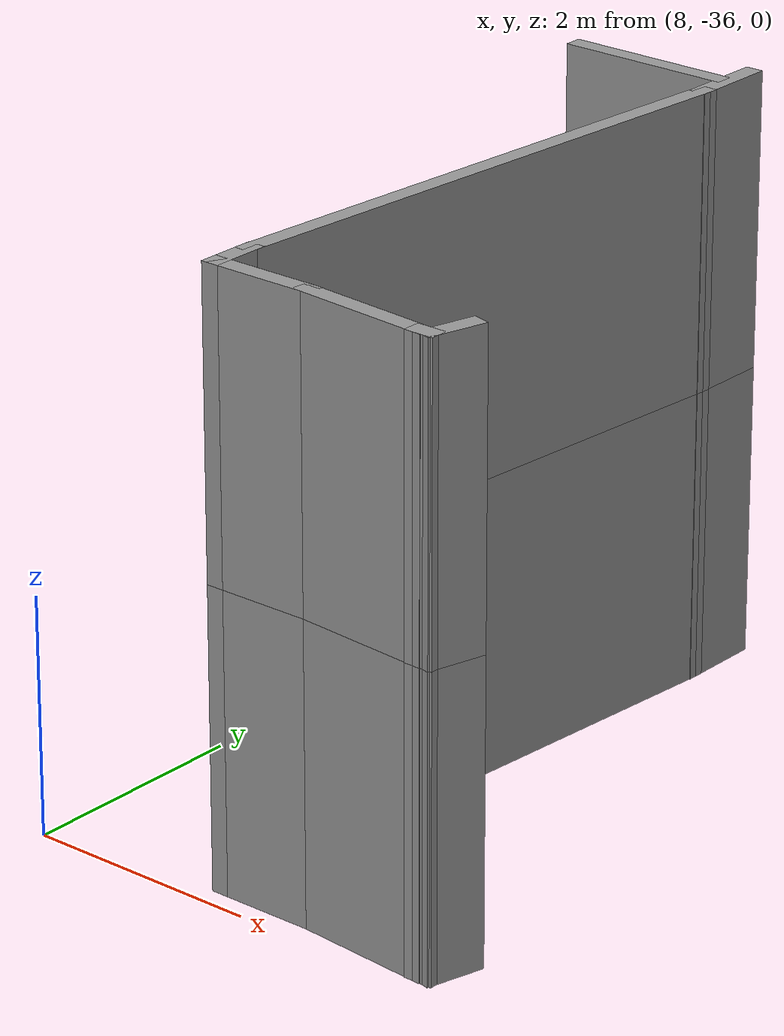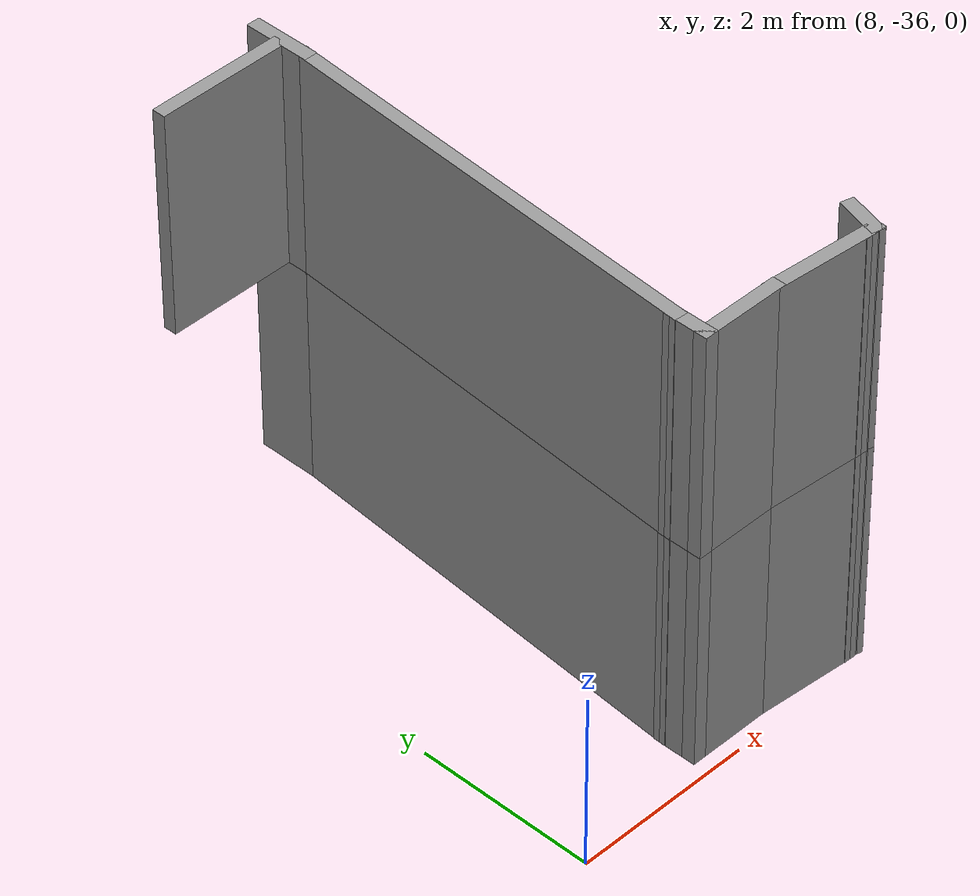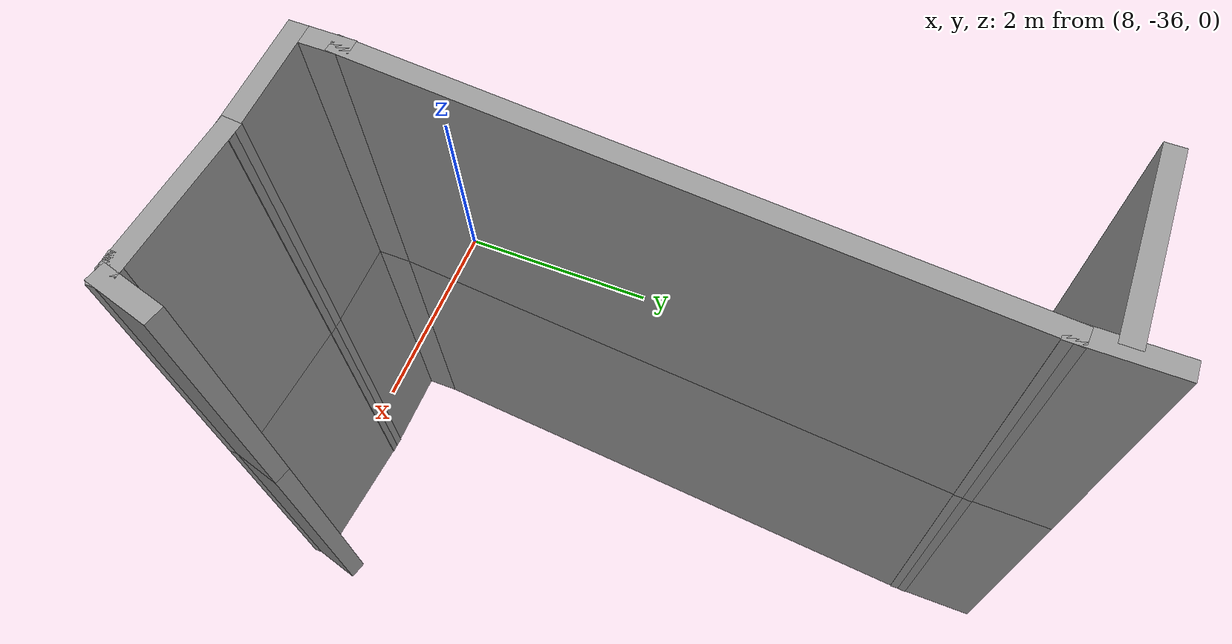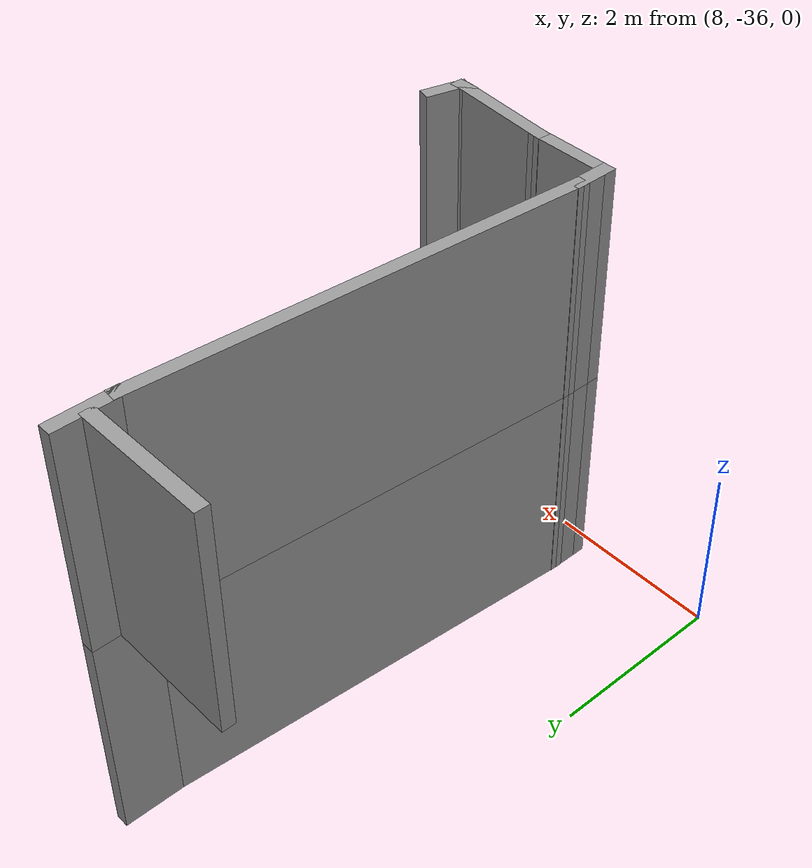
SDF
<sdf version="1.7">
 <model name="EnvDC01">
  <link name="Wall_207">
   <pose>11.6412 -35.8531 0 0 -0 3.14159</pose>
   <visual name="Wall_207_Visual">
    <pose>0 0 1.25 0 -0 0</pose>
    <geometry><box><size>0.25 0.15 2.5</size></box></geometry>
    <material>
     <script><uri>file://media/materials/scripts/gazebo.material</uri><name>Gazebo/Grey</name></script>
     <ambient>1 1 1 1</ambient>
     <shader type="pixel"/>
    </material>
    <meta><layer>0</layer></meta>
   </visual>
   <collision name="Wall_207_Collision">
    <pose>0 0 1.25 0 -0 0</pose>
    <geometry><box><size>0.25 0.15 2.5</size></box></geometry>
    <surface>
     <friction>
      <ode><mu>1</mu><mu2>1</mu2><fdir1>0 0 0</fdir1><slip1>0</slip1><slip2>0</slip2></ode>
      <torsional>
       <coefficient>1</coefficient>
       <patch_radius>0</patch_radius>
       <surface_radius>0</surface_radius>
       <use_patch_radius>1</use_patch_radius>
       <ode><slip>0</slip></ode>
      </torsional>
     </friction>
     <bounce><restitution_coefficient>0</restitution_coefficient><threshold>1e+06</threshold></bounce>
     <contact>
      <collide_without_contact>0</collide_without_contact>
      <collide_without_contact_bitmask>1</collide_without_contact_bitmask>
      <collide_bitmask>1</collide_bitmask>
      <ode>
       <soft_cfm>0</soft_cfm>
       <soft_erp>0.2</soft_erp>
       <kp>1e+13</kp>
       <kd>1</kd>
       <max_vel>0.01</max_vel>
       <min_depth>0</min_depth>
      </ode>
      <bullet>
       <split_impulse>1</split_impulse>
       <split_impulse_penetration_threshold>-0.01</split_impulse_penetration_threshold>
       <soft_cfm>0</soft_cfm>
       <soft_erp>0.2</soft_erp>
       <kp>1e+13</kp>
       <kd>1</kd>
      </bullet>
     </contact>
    </surface>
   </collision>
  </link>
  <link name="Wall_208">
   <pose>11.0472 -35.8078 0 0 -0 3.05853</pose>
   <visual name="Wall_208_Visual">
    <pose>0 0 1.25 0 -0 0</pose>
    <geometry><box><size>1.24184 0.15 2.5</size></box></geometry>
    <material>
     <script><uri>file://media/materials/scripts/gazebo.material</uri><name>Gazebo/Grey</name></script>
     <ambient>1 1 1 1</ambient>
     <shader type="pixel"/>
    </material>
    <meta><layer>0</layer></meta>
   </visual>
   <collision name="Wall_208_Collision">
    <pose>0 0 1.25 0 -0 0</pose>
    <geometry><box><size>1.24184 0.15 2.5</size></box></geometry>
    <surface>
     <friction>
      <ode><mu>1</mu><mu2>1</mu2><fdir1>0 0 0</fdir1><slip1>0</slip1><slip2>0</slip2></ode>
      <torsional>
       <coefficient>1</coefficient>
       <patch_radius>0</patch_radius>
       <surface_radius>0</surface_radius>
       <use_patch_radius>1</use_patch_radius>
       <ode><slip>0</slip></ode>
      </torsional>
     </friction>
     <bounce><restitution_coefficient>0</restitution_coefficient><threshold>1e+06</threshold></bounce>
     <contact>
      <collide_without_contact>0</collide_without_contact>
      <collide_without_contact_bitmask>1</collide_without_contact_bitmask>
      <collide_bitmask>1</collide_bitmask>
      <ode>
       <soft_cfm>0</soft_cfm>
       <soft_erp>0.2</soft_erp>
       <kp>1e+13</kp>
       <kd>1</kd>
       <max_vel>0.01</max_vel>
       <min_depth>0</min_depth>
      </ode>
      <bullet>
       <split_impulse>1</split_impulse>
       <split_impulse_penetration_threshold>-0.01</split_impulse_penetration_threshold>
       <soft_cfm>0</soft_cfm>
       <soft_erp>0.2</soft_erp>
       <kp>1e+13</kp>
       <kd>1</kd>
      </bullet>
     </contact>
    </surface>
   </collision>
  </link>
  <link name="Wall_209">
   <pose>10.0781 -35.7625 0 0 -0 3.14159</pose>
   <visual name="Wall_209_Visual">
    <pose>0 0 1.25 0 -0 0</pose>
    <geometry><box><size>1 0.15 2.5</size></box></geometry>
    <material>
     <script><uri>file://media/materials/scripts/gazebo.material</uri><name>Gazebo/Grey</name></script>
     <ambient>1 1 1 1</ambient>
     <shader type="pixel"/>
    </material>
    <meta><layer>0</layer></meta>
   </visual>
   <collision name="Wall_209_Collision">
    <pose>0 0 1.25 0 -0 0</pose>
    <geometry><box><size>1 0.15 2.5</size></box></geometry>
    <surface>
     <friction>
      <ode><mu>1</mu><mu2>1</mu2><fdir1>0 0 0</fdir1><slip1>0</slip1><slip2>0</slip2></ode>
      <torsional>
       <coefficient>1</coefficient>
       <patch_radius>0</patch_radius>
       <surface_radius>0</surface_radius>
       <use_patch_radius>1</use_patch_radius>
       <ode><slip>0</slip></ode>
      </torsional>
     </friction>
     <bounce><restitution_coefficient>0</restitution_coefficient><threshold>1e+06</threshold></bounce>
     <contact>
      <collide_without_contact>0</collide_without_contact>
      <collide_without_contact_bitmask>1</collide_without_contact_bitmask>
      <collide_bitmask>1</collide_bitmask>
      <ode>
       <soft_cfm>0</soft_cfm>
       <soft_erp>0.2</soft_erp>
       <kp>1e+13</kp>
       <kd>1</kd>
       <max_vel>0.01</max_vel>
       <min_depth>0</min_depth>
      </ode>
      <bullet>
       <split_impulse>1</split_impulse>
       <split_impulse_penetration_threshold>-0.01</split_impulse_penetration_threshold>
       <soft_cfm>0</soft_cfm>
       <soft_erp>0.2</soft_erp>
       <kp>1e+13</kp>
       <kd>1</kd>
      </bullet>
     </contact>
    </surface>
   </collision>
  </link>
  <link name="Wall_211">
   <pose>9.65311 -35.5875 0 0 -0 1.5708</pose>
   <visual name="Wall_211_Visual">
    <pose>0 0 1.25 0 -0 0</pose>
    <geometry><box><size>0.5 0.15 2.5</size></box></geometry>
    <material>
     <script><uri>file://media/materials/scripts/gazebo.material</uri><name>Gazebo/Grey</name></script>
     <ambient>1 1 1 1</ambient>
     <shader type="pixel"/>
    </material>
    <meta><layer>0</layer></meta>
   </visual>
   <collision name="Wall_211_Collision">
    <pose>0 0 1.25 0 -0 0</pose>
    <geometry><box><size>0.5 0.15 2.5</size></box></geometry>
    <surface>
     <friction>
      <ode><mu>1</mu><mu2>1</mu2><fdir1>0 0 0</fdir1><slip1>0</slip1><slip2>0</slip2></ode>
      <torsional>
       <coefficient>1</coefficient>
       <patch_radius>0</patch_radius>
       <surface_radius>0</surface_radius>
       <use_patch_radius>1</use_patch_radius>
       <ode><slip>0</slip></ode>
      </torsional>
     </friction>
     <bounce><restitution_coefficient>0</restitution_coefficient><threshold>1e+06</threshold></bounce>
     <contact>
      <collide_without_contact>0</collide_without_contact>
      <collide_without_contact_bitmask>1</collide_without_contact_bitmask>
      <collide_bitmask>1</collide_bitmask>
      <ode>
       <soft_cfm>0</soft_cfm>
       <soft_erp>0.2</soft_erp>
       <kp>1e+13</kp>
       <kd>1</kd>
       <max_vel>0.01</max_vel>
       <min_depth>0</min_depth>
      </ode>
      <bullet>
       <split_impulse>1</split_impulse>
       <split_impulse_penetration_threshold>-0.01</split_impulse_penetration_threshold>
       <soft_cfm>0</soft_cfm>
       <soft_erp>0.2</soft_erp>
       <kp>1e+13</kp>
       <kd>1</kd>
      </bullet>
     </contact>
    </surface>
   </collision>
  </link>
  <link name="Wall_212">
   <pose>9.836 -32.9912 0 0 -0 1.49541</pose>
   <visual name="Wall_212_Visual">
    <pose>0 0 1.25 0 -0 0</pose>
    <geometry><box><size>5.0065 0.15 2.5</size></box></geometry>
    <material>
     <script><uri>file://media/materials/scripts/gazebo.material</uri><name>Gazebo/Grey</name></script>
     <ambient>1 1 1 1</ambient>
     <shader type="pixel"/>
    </material>
    <meta><layer>0</layer></meta>
   </visual>
   <collision name="Wall_212_Collision">
    <pose>0 0 1.25 0 -0 0</pose>
    <geometry><box><size>5.0065 0.15 2.5</size></box></geometry>
    <surface>
     <friction>
      <ode><mu>1</mu><mu2>1</mu2><fdir1>0 0 0</fdir1><slip1>0</slip1><slip2>0</slip2></ode>
      <torsional>
       <coefficient>1</coefficient>
       <patch_radius>0</patch_radius>
       <surface_radius>0</surface_radius>
       <use_patch_radius>1</use_patch_radius>
       <ode><slip>0</slip></ode>
      </torsional>
     </friction>
     <bounce><restitution_coefficient>0</restitution_coefficient><threshold>1e+06</threshold></bounce>
     <contact>
      <collide_without_contact>0</collide_without_contact>
      <collide_without_contact_bitmask>1</collide_without_contact_bitmask>
      <collide_bitmask>1</collide_bitmask>
      <ode>
       <soft_cfm>0</soft_cfm>
       <soft_erp>0.2</soft_erp>
       <kp>1e+13</kp>
       <kd>1</kd>
       <max_vel>0.01</max_vel>
       <min_depth>0</min_depth>
      </ode>
      <bullet>
       <split_impulse>1</split_impulse>
       <split_impulse_penetration_threshold>-0.01</split_impulse_penetration_threshold>
       <soft_cfm>0</soft_cfm>
       <soft_erp>0.2</soft_erp>
       <kp>1e+13</kp>
       <kd>1</kd>
      </bullet>
     </contact>
    </surface>
   </collision>
  </link>
  <link name="Wall_213">
   <pose>10.0189 -30.2698 0 0 -0 1.5708</pose>
   <visual name="Wall_213_Visual">
    <pose>0 0 1.25 0 -0 0</pose>
    <geometry><box><size>0.75 0.15 2.5</size></box></geometry>
    <material>
     <script><uri>file://media/materials/scripts/gazebo.material</uri><name>Gazebo/Grey</name></script>
     <ambient>1 1 1 1</ambient>
     <shader type="pixel"/>
    </material>
    <meta><layer>0</layer></meta>
   </visual>
   <collision name="Wall_213_Collision">
    <pose>0 0 1.25 0 -0 0</pose>
    <geometry><box><size>0.75 0.15 2.5</size></box></geometry>
    <surface>
     <friction>
      <ode><mu>1</mu><mu2>1</mu2><fdir1>0 0 0</fdir1><slip1>0</slip1><slip2>0</slip2></ode>
      <torsional>
       <coefficient>1</coefficient>
       <patch_radius>0</patch_radius>
       <surface_radius>0</surface_radius>
       <use_patch_radius>1</use_patch_radius>
       <ode><slip>0</slip></ode>
      </torsional>
     </friction>
     <bounce><restitution_coefficient>0</restitution_coefficient><threshold>1e+06</threshold></bounce>
     <contact>
      <collide_without_contact>0</collide_without_contact>
      <collide_without_contact_bitmask>1</collide_without_contact_bitmask>
      <collide_bitmask>1</collide_bitmask>
      <ode>
       <soft_cfm>0</soft_cfm>
       <soft_erp>0.2</soft_erp>
       <kp>1e+13</kp>
       <kd>1</kd>
       <max_vel>0.01</max_vel>
       <min_depth>0</min_depth>
      </ode>
      <bullet>
       <split_impulse>1</split_impulse>
       <split_impulse_penetration_threshold>-0.01</split_impulse_penetration_threshold>
       <soft_cfm>0</soft_cfm>
       <soft_erp>0.2</soft_erp>
       <kp>1e+13</kp>
       <kd>1</kd>
      </bullet>
     </contact>
    </surface>
   </collision>
  </link>
  <link name="Wall_267">
   <pose>11.7365 -35.6841 2.5 0 -0 1.309</pose>
   <visual name="Wall_267_Visual">
    <pose>0 0 1.25 0 -0 0</pose>
    <geometry><box><size>0.5 0.15 2.5</size></box></geometry>
    <material>
     <script><uri>file://media/materials/scripts/gazebo.material</uri><name>Gazebo/Grey</name></script>
     <ambient>1 1 1 1</ambient>
     <shader type="pixel"/>
    </material>
    <meta><layer>1</layer></meta>
   </visual>
   <collision name="Wall_267_Collision">
    <pose>0 0 1.25 0 -0 0</pose>
    <geometry><box><size>0.5 0.15 2.5</size></box></geometry>
    <surface>
     <friction>
      <ode><mu>1</mu><mu2>1</mu2><fdir1>0 0 0</fdir1><slip1>0</slip1><slip2>0</slip2></ode>
      <torsional>
       <coefficient>1</coefficient>
       <patch_radius>0</patch_radius>
       <surface_radius>0</surface_radius>
       <use_patch_radius>1</use_patch_radius>
       <ode><slip>0</slip></ode>
      </torsional>
     </friction>
     <bounce><restitution_coefficient>0</restitution_coefficient><threshold>1e+06</threshold></bounce>
     <contact>
      <collide_without_contact>0</collide_without_contact>
      <collide_without_contact_bitmask>1</collide_without_contact_bitmask>
      <collide_bitmask>1</collide_bitmask>
      <ode>
       <soft_cfm>0</soft_cfm>
       <soft_erp>0.2</soft_erp>
       <kp>1e+13</kp>
       <kd>1</kd>
       <max_vel>0.01</max_vel>
       <min_depth>0</min_depth>
      </ode>
      <bullet>
       <split_impulse>1</split_impulse>
       <split_impulse_penetration_threshold>-0.01</split_impulse_penetration_threshold>
       <soft_cfm>0</soft_cfm>
       <soft_erp>0.2</soft_erp>
       <kp>1e+13</kp>
       <kd>1</kd>
      </bullet>
     </contact>
    </surface>
   </collision>
  </link>
  <link name="Wall_380">
   <pose>11.6412 -35.8531 2.5 0 -0 3.14159</pose>
   <visual name="Wall_380_Visual">
    <pose>0 0 1.25 0 -0 0</pose>
    <geometry><box><size>0.25 0.15 2.5</size></box></geometry>
    <material>
     <script><uri>file://media/materials/scripts/gazebo.material</uri><name>Gazebo/Grey</name></script>
     <ambient>1 1 1 1</ambient>
     <shader type="pixel"/>
    </material>
    <meta><layer>1</layer></meta>
   </visual>
   <collision name="Wall_380_Collision">
    <pose>0 0 1.25 0 -0 0</pose>
    <geometry><box><size>0.25 0.15 2.5</size></box></geometry>
    <surface>
     <friction>
      <ode><mu>1</mu><mu2>1</mu2><fdir1>0 0 0</fdir1><slip1>0</slip1><slip2>0</slip2></ode>
      <torsional>
       <coefficient>1</coefficient>
       <patch_radius>0</patch_radius>
       <surface_radius>0</surface_radius>
       <use_patch_radius>1</use_patch_radius>
       <ode><slip>0</slip></ode>
      </torsional>
     </friction>
     <bounce><restitution_coefficient>0</restitution_coefficient><threshold>1e+06</threshold></bounce>
     <contact>
      <collide_without_contact>0</collide_without_contact>
      <collide_without_contact_bitmask>1</collide_without_contact_bitmask>
      <collide_bitmask>1</collide_bitmask>
      <ode>
       <soft_cfm>0</soft_cfm>
       <soft_erp>0.2</soft_erp>
       <kp>1e+13</kp>
       <kd>1</kd>
       <max_vel>0.01</max_vel>
       <min_depth>0</min_depth>
      </ode>
      <bullet>
       <split_impulse>1</split_impulse>
       <split_impulse_penetration_threshold>-0.01</split_impulse_penetration_threshold>
       <soft_cfm>0</soft_cfm>
       <soft_erp>0.2</soft_erp>
       <kp>1e+13</kp>
       <kd>1</kd>
      </bullet>
     </contact>
    </surface>
   </collision>
  </link>
  <link name="Wall_381">
   <pose>11.0472 -35.8078 2.5 0 -0 3.05853</pose>
   <visual name="Wall_381_Visual">
    <pose>0 0 1.25 0 -0 0</pose>
    <geometry><box><size>1.24184 0.15 2.5</size></box></geometry>
    <material>
     <script><uri>file://media/materials/scripts/gazebo.material</uri><name>Gazebo/Grey</name></script>
     <ambient>1 1 1 1</ambient>
     <shader type="pixel"/>
    </material>
    <meta><layer>1</layer></meta>
   </visual>
   <collision name="Wall_381_Collision">
    <pose>0 0 1.25 0 -0 0</pose>
    <geometry><box><size>1.24184 0.15 2.5</size></box></geometry>
    <surface>
     <friction>
      <ode><mu>1</mu><mu2>1</mu2><fdir1>0 0 0</fdir1><slip1>0</slip1><slip2>0</slip2></ode>
      <torsional>
       <coefficient>1</coefficient>
       <patch_radius>0</patch_radius>
       <surface_radius>0</surface_radius>
       <use_patch_radius>1</use_patch_radius>
       <ode><slip>0</slip></ode>
      </torsional>
     </friction>
     <bounce><restitution_coefficient>0</restitution_coefficient><threshold>1e+06</threshold></bounce>
     <contact>
      <collide_without_contact>0</collide_without_contact>
      <collide_without_contact_bitmask>1</collide_without_contact_bitmask>
      <collide_bitmask>1</collide_bitmask>
      <ode>
       <soft_cfm>0</soft_cfm>
       <soft_erp>0.2</soft_erp>
       <kp>1e+13</kp>
       <kd>1</kd>
       <max_vel>0.01</max_vel>
       <min_depth>0</min_depth>
      </ode>
      <bullet>
       <split_impulse>1</split_impulse>
       <split_impulse_penetration_threshold>-0.01</split_impulse_penetration_threshold>
       <soft_cfm>0</soft_cfm>
       <soft_erp>0.2</soft_erp>
       <kp>1e+13</kp>
       <kd>1</kd>
      </bullet>
     </contact>
    </surface>
   </collision>
  </link>
  <link name="Wall_382">
   <pose>10.0781 -35.7625 2.5 0 -0 3.14159</pose>
   <visual name="Wall_382_Visual">
    <pose>0 0 1.25 0 -0 0</pose>
    <geometry><box><size>1 0.15 2.5</size></box></geometry>
    <material>
     <script><uri>file://media/materials/scripts/gazebo.material</uri><name>Gazebo/Grey</name></script>
     <ambient>1 1 1 1</ambient>
     <shader type="pixel"/>
    </material>
    <meta><layer>1</layer></meta>
   </visual>
   <collision name="Wall_382_Collision">
    <pose>0 0 1.25 0 -0 0</pose>
    <geometry><box><size>1 0.15 2.5</size></box></geometry>
    <surface>
     <friction>
      <ode><mu>1</mu><mu2>1</mu2><fdir1>0 0 0</fdir1><slip1>0</slip1><slip2>0</slip2></ode>
      <torsional>
       <coefficient>1</coefficient>
       <patch_radius>0</patch_radius>
       <surface_radius>0</surface_radius>
       <use_patch_radius>1</use_patch_radius>
       <ode><slip>0</slip></ode>
      </torsional>
     </friction>
     <bounce><restitution_coefficient>0</restitution_coefficient><threshold>1e+06</threshold></bounce>
     <contact>
      <collide_without_contact>0</collide_without_contact>
      <collide_without_contact_bitmask>1</collide_without_contact_bitmask>
      <collide_bitmask>1</collide_bitmask>
      <ode>
       <soft_cfm>0</soft_cfm>
       <soft_erp>0.2</soft_erp>
       <kp>1e+13</kp>
       <kd>1</kd>
       <max_vel>0.01</max_vel>
       <min_depth>0</min_depth>
      </ode>
      <bullet>
       <split_impulse>1</split_impulse>
       <split_impulse_penetration_threshold>-0.01</split_impulse_penetration_threshold>
       <soft_cfm>0</soft_cfm>
       <soft_erp>0.2</soft_erp>
       <kp>1e+13</kp>
       <kd>1</kd>
      </bullet>
     </contact>
    </surface>
   </collision>
  </link>
  <link name="Wall_383">
   <pose>9.65311 -35.5875 2.5 0 -0 1.5708</pose>
   <visual name="Wall_383_Visual">
    <pose>0 0 1.25 0 -0 0</pose>
    <geometry><box><size>0.5 0.15 2.5</size></box></geometry>
    <material>
     <script><uri>file://media/materials/scripts/gazebo.material</uri><name>Gazebo/Grey</name></script>
     <ambient>1 1 1 1</ambient>
     <shader type="pixel"/>
    </material>
    <meta><layer>1</layer></meta>
   </visual>
   <collision name="Wall_383_Collision">
    <pose>0 0 1.25 0 -0 0</pose>
    <geometry><box><size>0.5 0.15 2.5</size></box></geometry>
    <surface>
     <friction>
      <ode><mu>1</mu><mu2>1</mu2><fdir1>0 0 0</fdir1><slip1>0</slip1><slip2>0</slip2></ode>
      <torsional>
       <coefficient>1</coefficient>
       <patch_radius>0</patch_radius>
       <surface_radius>0</surface_radius>
       <use_patch_radius>1</use_patch_radius>
       <ode><slip>0</slip></ode>
      </torsional>
     </friction>
     <bounce><restitution_coefficient>0</restitution_coefficient><threshold>1e+06</threshold></bounce>
     <contact>
      <collide_without_contact>0</collide_without_contact>
      <collide_without_contact_bitmask>1</collide_without_contact_bitmask>
      <collide_bitmask>1</collide_bitmask>
      <ode>
       <soft_cfm>0</soft_cfm>
       <soft_erp>0.2</soft_erp>
       <kp>1e+13</kp>
       <kd>1</kd>
       <max_vel>0.01</max_vel>
       <min_depth>0</min_depth>
      </ode>
      <bullet>
       <split_impulse>1</split_impulse>
       <split_impulse_penetration_threshold>-0.01</split_impulse_penetration_threshold>
       <soft_cfm>0</soft_cfm>
       <soft_erp>0.2</soft_erp>
       <kp>1e+13</kp>
       <kd>1</kd>
      </bullet>
     </contact>
    </surface>
   </collision>
  </link>
  <link name="Wall_384">
   <pose>9.836 -32.9912 2.5 0 -0 1.49541</pose>
   <visual name="Wall_384_Visual">
    <pose>0 0 1.25 0 -0 0</pose>
    <geometry><box><size>5.0065 0.15 2.5</size></box></geometry>
    <material>
     <script><uri>file://media/materials/scripts/gazebo.material</uri><name>Gazebo/Grey</name></script>
     <ambient>1 1 1 1</ambient>
     <shader type="pixel"/>
    </material>
    <meta><layer>1</layer></meta>
   </visual>
   <collision name="Wall_384_Collision">
    <pose>0 0 1.25 0 -0 0</pose>
    <geometry><box><size>5.0065 0.15 2.5</size></box></geometry>
    <surface>
     <friction>
      <ode><mu>1</mu><mu2>1</mu2><fdir1>0 0 0</fdir1><slip1>0</slip1><slip2>0</slip2></ode>
      <torsional>
       <coefficient>1</coefficient>
       <patch_radius>0</patch_radius>
       <surface_radius>0</surface_radius>
       <use_patch_radius>1</use_patch_radius>
       <ode><slip>0</slip></ode>
      </torsional>
     </friction>
     <bounce><restitution_coefficient>0</restitution_coefficient><threshold>1e+06</threshold></bounce>
     <contact>
      <collide_without_contact>0</collide_without_contact>
      <collide_without_contact_bitmask>1</collide_without_contact_bitmask>
      <collide_bitmask>1</collide_bitmask>
      <ode>
       <soft_cfm>0</soft_cfm>
       <soft_erp>0.2</soft_erp>
       <kp>1e+13</kp>
       <kd>1</kd>
       <max_vel>0.01</max_vel>
       <min_depth>0</min_depth>
      </ode>
      <bullet>
       <split_impulse>1</split_impulse>
       <split_impulse_penetration_threshold>-0.01</split_impulse_penetration_threshold>
       <soft_cfm>0</soft_cfm>
       <soft_erp>0.2</soft_erp>
       <kp>1e+13</kp>
       <kd>1</kd>
      </bullet>
     </contact>
    </surface>
   </collision>
  </link>
  <link name="Wall_385">
   <pose>10.0189 -30.2698 2.5 0 -0 1.5708</pose>
   <visual name="Wall_385_Visual">
    <pose>0 0 1.25 0 -0 0</pose>
    <geometry><box><size>0.75 0.15 2.5</size></box></geometry>
    <material>
     <script><uri>file://media/materials/scripts/gazebo.material</uri><name>Gazebo/Grey</name></script>
     <ambient>1 1 1 1</ambient>
     <shader type="pixel"/>
    </material>
    <meta><layer>1</layer></meta>
   </visual>
   <collision name="Wall_385_Collision">
    <pose>0 0 1.25 0 -0 0</pose>
    <geometry><box><size>0.75 0.15 2.5</size></box></geometry>
    <surface>
     <friction>
      <ode><mu>1</mu><mu2>1</mu2><fdir1>0 0 0</fdir1><slip1>0</slip1><slip2>0</slip2></ode>
      <torsional>
       <coefficient>1</coefficient>
       <patch_radius>0</patch_radius>
       <surface_radius>0</surface_radius>
       <use_patch_radius>1</use_patch_radius>
       <ode><slip>0</slip></ode>
      </torsional>
     </friction>
     <bounce><restitution_coefficient>0</restitution_coefficient><threshold>1e+06</threshold></bounce>
     <contact>
      <collide_without_contact>0</collide_without_contact>
      <collide_without_contact_bitmask>1</collide_without_contact_bitmask>
      <collide_bitmask>1</collide_bitmask>
      <ode>
       <soft_cfm>0</soft_cfm>
       <soft_erp>0.2</soft_erp>
       <kp>1e+13</kp>
       <kd>1</kd>
       <max_vel>0.01</max_vel>
       <min_depth>0</min_depth>
      </ode>
      <bullet>
       <split_impulse>1</split_impulse>
       <split_impulse_penetration_threshold>-0.01</split_impulse_penetration_threshold>
       <soft_cfm>0</soft_cfm>
       <soft_erp>0.2</soft_erp>
       <kp>1e+13</kp>
       <kd>1</kd>
      </bullet>
     </contact>
    </surface>
   </collision>
  </link>
  <link name="Wall_386">
   <pose>9.25228 -30.2692 2.5 0 -0 3.14159</pose>
   <visual name="Wall_386_Visual">
    <pose>0 0 1.25 0 -0 0</pose>
    <geometry><box><size>1.5 0.15 2.5</size></box></geometry>
    <material>
     <script><uri>file://media/materials/scripts/gazebo.material</uri><name>Gazebo/Grey</name></script>
     <ambient>1 1 1 1</ambient>
     <shader type="pixel"/>
    </material>
    <meta><layer>1</layer></meta>
   </visual>
   <collision name="Wall_386_Collision">
    <pose>0 0 1.25 0 -0 0</pose>
    <geometry><box><size>1.5 0.15 2.5</size></box></geometry>
    <surface>
     <friction>
      <ode><mu>1</mu><mu2>1</mu2><fdir1>0 0 0</fdir1><slip1>0</slip1><slip2>0</slip2></ode>
      <torsional>
       <coefficient>1</coefficient>
       <patch_radius>0</patch_radius>
       <surface_radius>0</surface_radius>
       <use_patch_radius>1</use_patch_radius>
       <ode><slip>0</slip></ode>
      </torsional>
     </friction>
     <bounce><restitution_coefficient>0</restitution_coefficient><threshold>1e+06</threshold></bounce>
     <contact>
      <collide_without_contact>0</collide_without_contact>
      <collide_without_contact_bitmask>1</collide_without_contact_bitmask>
      <collide_bitmask>1</collide_bitmask>
      <ode>
       <soft_cfm>0</soft_cfm>
       <soft_erp>0.2</soft_erp>
       <kp>1e+13</kp>
       <kd>1</kd>
       <max_vel>0.01</max_vel>
       <min_depth>0</min_depth>
      </ode>
      <bullet>
       <split_impulse>1</split_impulse>
       <split_impulse_penetration_threshold>-0.01</split_impulse_penetration_threshold>
       <soft_cfm>0</soft_cfm>
       <soft_erp>0.2</soft_erp>
       <kp>1e+13</kp>
       <kd>1</kd>
      </bullet>
     </contact>
    </surface>
   </collision>
  </link>
  <link name="Wall_43">
   <pose>11.7365 -35.6841 0 0 -0 1.309</pose>
   <visual name="Wall_43_Visual">
    <pose>0 0 1.25 0 -0 0</pose>
    <geometry><box><size>0.5 0.15 2.5</size></box></geometry>
    <material>
     <script><uri>file://media/materials/scripts/gazebo.material</uri><name>Gazebo/Grey</name></script>
     <ambient>1 1 1 1</ambient>
     <shader type="pixel"/>
    </material>
    <meta><layer>0</layer></meta>
   </visual>
   <collision name="Wall_43_Collision">
    <pose>0 0 1.25 0 -0 0</pose>
    <geometry><box><size>0.5 0.15 2.5</size></box></geometry>
    <surface>
     <friction>
      <ode><mu>1</mu><mu2>1</mu2><fdir1>0 0 0</fdir1><slip1>0</slip1><slip2>0</slip2></ode>
      <torsional>
       <coefficient>1</coefficient>
       <patch_radius>0</patch_radius>
       <surface_radius>0</surface_radius>
       <use_patch_radius>1</use_patch_radius>
       <ode><slip>0</slip></ode>
      </torsional>
     </friction>
     <bounce><restitution_coefficient>0</restitution_coefficient><threshold>1e+06</threshold></bounce>
     <contact>
      <collide_without_contact>0</collide_without_contact>
      <collide_without_contact_bitmask>1</collide_without_contact_bitmask>
      <collide_bitmask>1</collide_bitmask>
      <ode>
       <soft_cfm>0</soft_cfm>
       <soft_erp>0.2</soft_erp>
       <kp>1e+13</kp>
       <kd>1</kd>
       <max_vel>0.01</max_vel>
       <min_depth>0</min_depth>
      </ode>
      <bullet>
       <split_impulse>1</split_impulse>
       <split_impulse_penetration_threshold>-0.01</split_impulse_penetration_threshold>
       <soft_cfm>0</soft_cfm>
       <soft_erp>0.2</soft_erp>
       <kp>1e+13</kp>
       <kd>1</kd>
      </bullet>
     </contact>
    </surface>
   </collision>
  </link>
  <static>1</static>
 </model>
</sdf>
